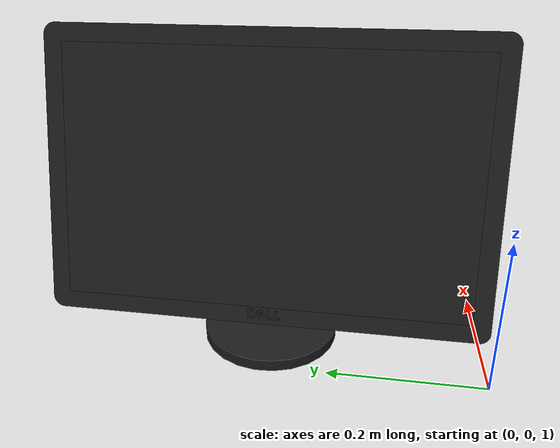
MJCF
<mujoco model="partnet_4589">
  <default>
    <default class="display">
      <mesh scale="0.4 0.4 0.4" />
      <joint limited="true" damping="0.01" armature="0.01" frictionloss="0.01" />
      <motor ctrllimited="true" />
      <equality solref="0.001 2" />
      <default class="display/visual">
        <geom condim="1" contype="0" conaffinity="0" group="2" />
      </default>
      <default class="display/collision">
        <geom condim="4" contype="1" conaffinity="14" friction="0.9 0.2 0.2" solref="0.001 2" group="3" />
      </default>
    </default>
  </default>
  <asset>
    <material name="display_original-15_material_0_0" specular="0.06666666666666667" shininess="0.03" rgba="0.11372549019607843 0.11372549019607843 0.11372549019607843 1" />
    <mesh file="display/textured_objs_thickness/original-15/original-15.obj" name="display_original-15"  scale="0.4 0.4 0.4" />
    <material name="display_original-5_material_0_0" specular="0.06666666666666667" shininess="0.03" rgba="0.11372549019607843 0.11372549019607843 0.11372549019607843 1" />
    <mesh file="display/textured_objs_thickness/original-5/original-5.obj" name="display_original-5"  scale="0.4 0.4 0.4" />
    <material name="display_original-10_material_0_0" specular="0.06666666666666667" shininess="0.03" rgba="0.11372549019607843 0.11372549019607843 0.11372549019607843 1" />
    <mesh file="display/textured_objs_thickness/original-10/original-10.obj" name="display_original-10"  scale="0.4 0.4 0.4" />
    <material name="display_original-8_material_0_0" specular="0.06666666666666667" shininess="0.03" rgba="0.11372549019607843 0.11372549019607843 0.11372549019607843 1" />
    <mesh file="display/textured_objs_thickness/original-8/original-8.obj" name="display_original-8"  scale="0.4 0.4 0.4" />
    <material name="display_new-1_material-0" specular="0.06666666666666667" shininess="0.03" rgba="0.11372549019607843 0.11372549019607843 0.11372549019607843 1" />
    <mesh file="display/textured_objs_thickness/new-1/new-1.obj" name="display_new-1"  scale="0.4 0.4 0.4" />
    <material name="display_original-9_material_0_0" specular="0.06666666666666667" shininess="0.03" rgba="0.11372549019607843 0.11372549019607843 0.11372549019607843 1" />
    <mesh file="display/textured_objs_thickness/original-9/original-9.obj" name="display_original-9"  scale="0.4 0.4 0.4" />
    <material name="display_original-4_material_0_0" specular="0.06666666666666667" shininess="0.03" rgba="0.11372549019607843 0.11372549019607843 0.11372549019607843 1" />
    <mesh file="display/textured_objs_thickness/original-4/original-4.obj" name="display_original-4"  scale="0.4 0.4 0.4" />
    <material name="display_original-14_material_0_0" specular="0.06666666666666667" shininess="0.03" rgba="0.11372549019607843 0.11372549019607843 0.11372549019607843 1" />
    <mesh file="display/textured_objs_thickness/original-14/original-14.obj" name="display_original-14"  scale="0.4 0.4 0.4" />
    <material name="display_original-6_material_0_0" specular="0.06666666666666667" shininess="0.03" rgba="0.11372549019607843 0.11372549019607843 0.11372549019607843 1" />
    <mesh file="display/textured_objs_thickness/original-6/original-6.obj" name="display_original-6"  scale="0.4 0.4 0.4" />
    <material name="display_original-11_material_0_0" specular="0.06666666666666667" shininess="0.03" rgba="0.11372549019607843 0.11372549019607843 0.11372549019607843 1" />
    <mesh file="display/textured_objs_thickness/original-11/original-11.obj" name="display_original-11"  scale="0.4 0.4 0.4" />
    <material name="display_new-0_material-0" specular="0.06666666666666667" shininess="0.03" rgba="0.11372549019607843 0.11372549019607843 0.11372549019607843 1" />
    <mesh file="display/textured_objs_thickness/new-0/new-0.obj" name="display_new-0"  scale="0.4 0.4 0.4" />
    <material name="display_original-3_material_0_0" specular="0.06666666666666667" shininess="0.03" rgba="0.11372549019607843 0.11372549019607843 0.11372549019607843 1" />
    <mesh file="display/textured_objs_thickness/original-3/original-3.obj" name="display_original-3"  scale="0.4 0.4 0.4" />
  </asset>
  <worldbody>
    <light directional="true" pos="0 0 0.05" dir="0 0 -1" castshadow="false" />
    <body name="display_link_1" pos="0.2 0.3 1.16" quat="0.4999999999999998 0.5 -0.5000000000000002 -0.5" childclass="display">
      <freejoint name="display_root" />
      <geom name="display_geom" pos="0.0 0.0 0.0" quat="1 0 0 0" type="mesh" mesh="display_original-15" material="display_original-15_material_0_0" density="100" class="display/visual" />
      <geom pos="0.0 0.0 0.0" quat="1 0 0 0" type="mesh" mesh="display_original-14" material="display_original-14_material_0_0" density="0" class="display/visual" />
      <geom pos="0.0 0.0 0.0" quat="1 0 0 0" type="mesh" mesh="display_original-15" material="display_original-15_material_0_0" class="display/collision" />
      <geom pos="0.0 0.0 0.0" quat="1 0 0 0" type="mesh" mesh="display_original-14" material="display_original-14_material_0_0" class="display/collision" />
      <body name="display_link_0" pos="0.009387200000000063 -0.015523215990950332 -0.007618436310905705">
        <joint name="joint_0" pos="0 0 0" axis="-1 0 0" range="-0.0 0.4363323129985824" type="hinge" />
        <geom pos="-0.009387200000000063 0.015523215990950332 0.007618436310905705" quat="1 0 0 0" type="mesh" mesh="display_original-4" material="display_original-4_material_0_0" density="0" class="display/visual" />
        <geom pos="-0.009387200000000063 0.015523215990950332 0.007618436310905705" quat="1 0 0 0" type="mesh" mesh="display_original-3" material="display_original-3_material_0_0" density="0" class="display/visual" />
        <geom pos="-0.009387200000000063 0.015523215990950332 0.007618436310905705" quat="1 0 0 0" type="mesh" mesh="display_new-1" material="display_new-1_material-0" density="0" class="display/visual" />
        <geom pos="-0.009387200000000063 0.015523215990950332 0.007618436310905705" quat="1 0 0 0" type="mesh" mesh="display_original-5" material="display_original-5_material_0_0" density="0" class="display/visual" />
        <geom pos="-0.009387200000000063 0.015523215990950332 0.007618436310905705" quat="1 0 0 0" type="mesh" mesh="display_original-6" material="display_original-6_material_0_0" density="0" class="display/visual" />
        <geom pos="-0.009387200000000063 0.015523215990950332 0.007618436310905705" quat="1 0 0 0" type="mesh" mesh="display_original-8" material="display_original-8_material_0_0" density="0" class="display/visual" />
        <geom pos="-0.009387200000000063 0.015523215990950332 0.007618436310905705" quat="1 0 0 0" type="mesh" mesh="display_original-9" material="display_original-9_material_0_0" density="0" class="display/visual" />
        <geom pos="-0.009387200000000063 0.015523215990950332 0.007618436310905705" quat="1 0 0 0" type="mesh" mesh="display_original-10" material="display_original-10_material_0_0" density="0" class="display/visual" />
        <geom pos="-0.009387200000000063 0.015523215990950332 0.007618436310905705" quat="1 0 0 0" type="mesh" mesh="display_original-11" material="display_original-11_material_0_0" density="0" class="display/visual" />
        <geom pos="-0.009387200000000063 0.015523215990950332 0.007618436310905705" quat="1 0 0 0" type="mesh" mesh="display_new-0" material="display_new-0_material-0" density="0" class="display/visual" />
        <geom pos="-0.009387200000000063 0.015523215990950332 0.007618436310905705" quat="1 0 0 0" type="mesh" mesh="display_original-4" material="display_original-4_material_0_0" class="display/collision" />
        <geom pos="-0.009387200000000063 0.015523215990950332 0.007618436310905705" quat="1 0 0 0" type="mesh" mesh="display_original-3" material="display_original-3_material_0_0" class="display/collision" />
        <geom pos="-0.009387200000000063 0.015523215990950332 0.007618436310905705" quat="1 0 0 0" type="mesh" mesh="display_new-1" material="display_new-1_material-0" class="display/collision" />
        <geom pos="-0.009387200000000063 0.015523215990950332 0.007618436310905705" quat="1 0 0 0" type="mesh" mesh="display_original-5" material="display_original-5_material_0_0" class="display/collision" />
        <geom pos="-0.009387200000000063 0.015523215990950332 0.007618436310905705" quat="1 0 0 0" type="mesh" mesh="display_original-6" material="display_original-6_material_0_0" class="display/collision" />
        <geom pos="-0.009387200000000063 0.015523215990950332 0.007618436310905705" quat="1 0 0 0" type="mesh" mesh="display_original-8" material="display_original-8_material_0_0" class="display/collision" />
        <geom pos="-0.009387200000000063 0.015523215990950332 0.007618436310905705" quat="1 0 0 0" type="mesh" mesh="display_original-9" material="display_original-9_material_0_0" class="display/collision" />
        <geom pos="-0.009387200000000063 0.015523215990950332 0.007618436310905705" quat="1 0 0 0" type="mesh" mesh="display_original-10" material="display_original-10_material_0_0" class="display/collision" />
        <geom pos="-0.009387200000000063 0.015523215990950332 0.007618436310905705" quat="1 0 0 0" type="mesh" mesh="display_original-11" material="display_original-11_material_0_0" class="display/collision" />
        <geom pos="-0.009387200000000063 0.015523215990950332 0.007618436310905705" quat="1 0 0 0" type="mesh" mesh="display_new-0" material="display_new-0_material-0" class="display/collision" />
      </body>
    </body>
  </worldbody>
  <actuator>
    <motor name="joint_0" joint="joint_0" ctrllimited="true" ctrlrange="-1 1" gear="1" />
  </actuator>
</mujoco>
